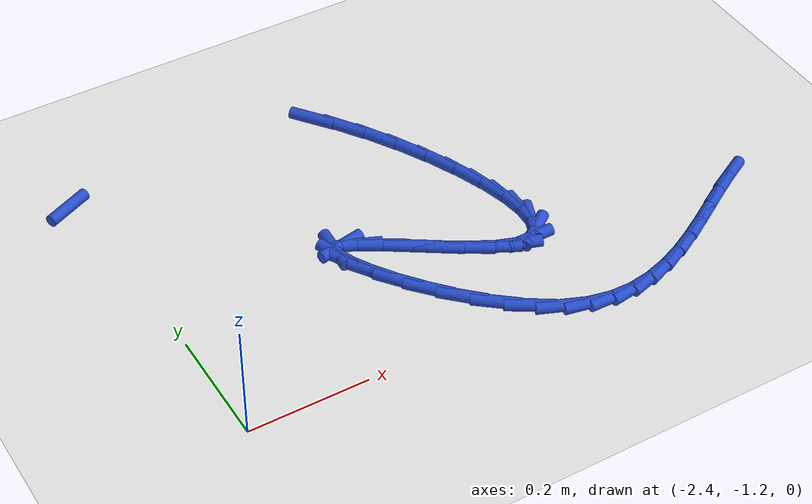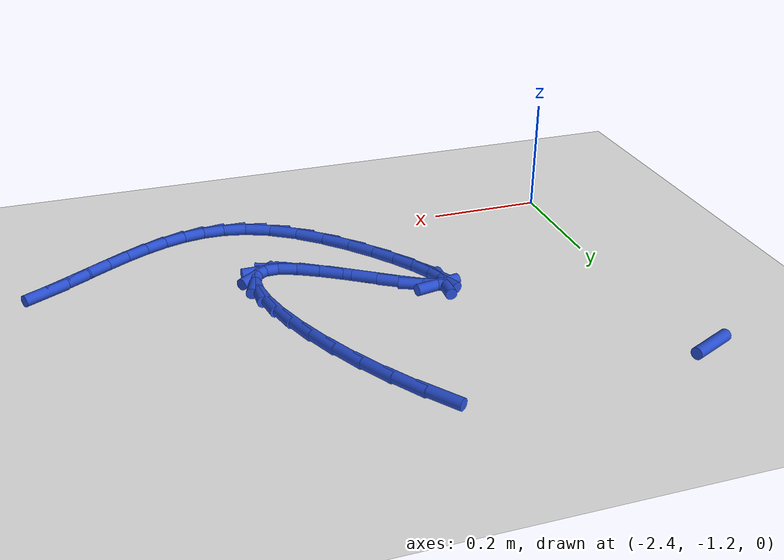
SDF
<sdf version="1.6">
 <world name="default">
  <model name="ground_plane">
   <static>1</static>
   <link name="link">
    <collision name="collision">
     <geometry><plane><normal>0 0 1</normal><size>100 100</size></plane></geometry>
     <surface><friction><ode><mu>100</mu><mu2>50</mu2></ode></friction></surface>
    </collision>
    <visual name="visual">
     <cast_shadows>0</cast_shadows>
     <geometry><plane><normal>0 0 1</normal><size>100 100</size></plane></geometry>
     <material>
      <script><uri>file://media/materials/scripts/gazebo.material</uri><name>Gazebo/WhiteGlow</name></script>
     </material>
    </visual>
   </link>
  </model>
  <model name="line">
   <link name="link_135">
    <pose>-2.432918932165104 -0.6413918340768284 0.01 0 1.57 0.4262401423666854</pose>
    <collision name="collision">
     <geometry><cylinder><radius>0.01</radius><length>0.08</length></cylinder></geometry>
    </collision>
    <visual name="visual">
     <material>
      <script><name>Gazebo/Blue</name><uri>file://media/materials/scripts/gazebo.material</uri></script>
     </material>
     <geometry><cylinder><radius>0.01</radius><length>0.08</length></cylinder></geometry>
    </visual>
   </link>
   <link name="link_149">
    <pose>-1.9900676363987346 -0.6446291324303864 0.01 0 1.57 -0.9224750128395854</pose>
    <collision name="collision">
     <geometry><cylinder><radius>0.01</radius><length>0.08</length></cylinder></geometry>
    </collision>
    <visual name="visual">
     <material>
      <script><name>Gazebo/Blue</name><uri>file://media/materials/scripts/gazebo.material</uri></script>
     </material>
     <geometry><cylinder><radius>0.01</radius><length>0.08</length></cylinder></geometry>
    </visual>
   </link>
   <link name="link_150">
    <pose>-1.9550635103245573 -0.6908356036253988 0.01 0 1.57 -0.9858784904764801</pose>
    <collision name="collision">
     <geometry><cylinder><radius>0.01</radius><length>0.08</length></cylinder></geometry>
    </collision>
    <visual name="visual">
     <material>
      <script><name>Gazebo/Blue</name><uri>file://media/materials/scripts/gazebo.material</uri></script>
     </material>
     <geometry><cylinder><radius>0.01</radius><length>0.08</length></cylinder></geometry>
    </visual>
   </link>
   <link name="link_151">
    <pose>-1.9226554815442716 -0.7397740646977872 0.01 0 1.57 -1.0437788238922734</pose>
    <collision name="collision">
     <geometry><cylinder><radius>0.01</radius><length>0.08</length></cylinder></geometry>
    </collision>
    <visual name="visual">
     <material>
      <script><name>Gazebo/Blue</name><uri>file://media/materials/scripts/gazebo.material</uri></script>
     </material>
     <geometry><cylinder><radius>0.01</radius><length>0.08</length></cylinder></geometry>
    </visual>
   </link>
   <link name="link_152">
    <pose>-1.8933911504834058 -0.7900635400556469 0.01 0 1.57 -1.1001178455500757</pose>
    <collision name="collision">
     <geometry><cylinder><radius>0.01</radius><length>0.08</length></cylinder></geometry>
    </collision>
    <visual name="visual">
     <material>
      <script><name>Gazebo/Blue</name><uri>file://media/materials/scripts/gazebo.material</uri></script>
     </material>
     <geometry><cylinder><radius>0.01</radius><length>0.08</length></cylinder></geometry>
    </visual>
   </link>
   <link name="link_153">
    <pose>-1.867818117567488 -0.8403230541070736 0.01 0 1.57 -1.1590238486146762</pose>
    <collision name="collision">
     <geometry><cylinder><radius>0.01</radius><length>0.08</length></cylinder></geometry>
    </collision>
    <visual name="visual">
     <material>
      <script><name>Gazebo/Blue</name><uri>file://media/materials/scripts/gazebo.material</uri></script>
     </material>
     <geometry><cylinder><radius>0.01</radius><length>0.08</length></cylinder></geometry>
    </visual>
   </link>
   <link name="link_154">
    <pose>-1.8464839832220479 -0.8891716312601631 0.01 0 1.57 -1.225870654361087</pose>
    <collision name="collision">
     <geometry><cylinder><radius>0.01</radius><length>0.08</length></cylinder></geometry>
    </collision>
    <visual name="visual">
     <material>
      <script><name>Gazebo/Blue</name><uri>file://media/materials/scripts/gazebo.material</uri></script>
     </material>
     <geometry><cylinder><radius>0.01</radius><length>0.08</length></cylinder></geometry>
    </visual>
   </link>
   <link name="link_155">
    <pose>-1.8299363478726132 -0.9352282959230106 0.01 0 1.57 -1.309201628307004</pose>
    <collision name="collision">
     <geometry><cylinder><radius>0.01</radius><length>0.08</length></cylinder></geometry>
    </collision>
    <visual name="visual">
     <material>
      <script><name>Gazebo/Blue</name><uri>file://media/materials/scripts/gazebo.material</uri></script>
     </material>
     <geometry><cylinder><radius>0.01</radius><length>0.08</length></cylinder></geometry>
    </visual>
   </link>
   <link name="link_156">
    <pose>-1.8187228119447134 -0.9771120725037121 0.01 0 1.57 -1.425075015032869</pose>
    <collision name="collision">
     <geometry><cylinder><radius>0.01</radius><length>0.08</length></cylinder></geometry>
    </collision>
    <visual name="visual">
     <material>
      <script><name>Gazebo/Blue</name><uri>file://media/materials/scripts/gazebo.material</uri></script>
     </material>
     <geometry><cylinder><radius>0.01</radius><length>0.08</length></cylinder></geometry>
    </visual>
   </link>
   <link name="link_157">
    <pose>-1.8133909758638764 -1.013441985410363 0.01 0 1.57 1.533478689398763</pose>
    <collision name="collision">
     <geometry><cylinder><radius>0.01</radius><length>0.08</length></cylinder></geometry>
    </collision>
    <visual name="visual">
     <material>
      <script><name>Gazebo/Blue</name><uri>file://media/materials/scripts/gazebo.material</uri></script>
     </material>
     <geometry><cylinder><radius>0.01</radius><length>0.08</length></cylinder></geometry>
    </visual>
   </link>
   <link name="link_158">
    <pose>-1.814488440055631 -1.042837059051059 0.01 0 1.57 1.2049887368963415</pose>
    <collision name="collision">
     <geometry><cylinder><radius>0.01</radius><length>0.08</length></cylinder></geometry>
    </collision>
    <visual name="visual">
     <material>
      <script><name>Gazebo/Blue</name><uri>file://media/materials/scripts/gazebo.material</uri></script>
     </material>
     <geometry><cylinder><radius>0.01</radius><length>0.08</length></cylinder></geometry>
    </visual>
   </link>
   <link name="link_159">
    <pose>-1.8225628049455058 -1.0639163178338955 0.01 0 1.57 0.6303810095413391</pose>
    <collision name="collision">
     <geometry><cylinder><radius>0.01</radius><length>0.08</length></cylinder></geometry>
    </collision>
    <visual name="visual">
     <material>
      <script><name>Gazebo/Blue</name><uri>file://media/materials/scripts/gazebo.material</uri></script>
     </material>
     <geometry><cylinder><radius>0.01</radius><length>0.08</length></cylinder></geometry>
    </visual>
   </link>
   <link name="link_160">
    <pose>-1.8381616709590298 -1.0752987861669685 0.01 0 1.57 0.012888890067230823</pose>
    <collision name="collision">
     <geometry><cylinder><radius>0.01</radius><length>0.08</length></cylinder></geometry>
    </collision>
    <visual name="visual">
     <material>
      <script><name>Gazebo/Blue</name><uri>file://media/materials/scripts/gazebo.material</uri></script>
     </material>
     <geometry><cylinder><radius>0.01</radius><length>0.08</length></cylinder></geometry>
    </visual>
   </link>
   <link name="link_161">
    <pose>-1.86183236299863 -1.0756038920097515 0.01 0 1.57 -0.33874397087114905</pose>
    <collision name="collision">
     <geometry><cylinder><radius>0.01</radius><length>0.08</length></cylinder></geometry>
    </collision>
    <visual name="visual">
     <material>
      <script><name>Gazebo/Blue</name><uri>file://media/materials/scripts/gazebo.material</uri></script>
     </material>
     <geometry><cylinder><radius>0.01</radius><length>0.08</length></cylinder></geometry>
    </visual>
   </link>
   <link name="link_162">
    <pose>-1.8934242847598068 -1.0644732900011544 0.01 0 1.57 -0.4873912658757481</pose>
    <collision name="collision">
     <geometry><cylinder><radius>0.01</radius><length>0.08</length></cylinder></geometry>
    </collision>
    <visual name="visual">
     <material>
      <script><name>Gazebo/Blue</name><uri>file://media/materials/scripts/gazebo.material</uri></script>
     </material>
     <geometry><cylinder><radius>0.01</radius><length>0.08</length></cylinder></geometry>
    </visual>
   </link>
   <link name="link_163">
    <pose>-1.9305818503959231 -1.0447782244751416 0.01 0 1.57 -0.5548769282705673</pose>
    <collision name="collision">
     <geometry><cylinder><radius>0.01</radius><length>0.08</length></cylinder></geometry>
    </collision>
    <visual name="visual">
     <material>
      <script><name>Gazebo/Blue</name><uri>file://media/materials/scripts/gazebo.material</uri></script>
     </material>
     <geometry><cylinder><radius>0.01</radius><length>0.08</length></cylinder></geometry>
    </visual>
   </link>
   <link name="link_164">
    <pose>-1.9705150752071943 -1.0200261922434586 0.01 0 1.57 -0.5825878629567202</pose>
    <collision name="collision">
     <geometry><cylinder><radius>0.01</radius><length>0.08</length></cylinder></geometry>
    </collision>
    <visual name="visual">
     <material>
      <script><name>Gazebo/Blue</name><uri>file://media/materials/scripts/gazebo.material</uri></script>
     </material>
     <geometry><cylinder><radius>0.01</radius><length>0.08</length></cylinder></geometry>
    </visual>
   </link>
   <link name="link_165">
    <pose>-2.0104339744938358 -0.9937246901178507 0.01 0 1.57 -0.5805119786318045</pose>
    <collision name="collision">
     <geometry><cylinder><radius>0.01</radius><length>0.08</length></cylinder></geometry>
    </collision>
    <visual name="visual">
     <material>
      <script><name>Gazebo/Blue</name><uri>file://media/materials/scripts/gazebo.material</uri></script>
     </material>
     <geometry><cylinder><radius>0.01</radius><length>0.08</length></cylinder></geometry>
    </visual>
   </link>
   <link name="link_166">
    <pose>-2.047548563556063 -0.9693812149100642 0.01 0 1.57 -0.5396207291692361</pose>
    <collision name="collision">
     <geometry><cylinder><radius>0.01</radius><length>0.08</length></cylinder></geometry>
    </collision>
    <visual name="visual">
     <material>
      <script><name>Gazebo/Blue</name><uri>file://media/materials/scripts/gazebo.material</uri></script>
     </material>
     <geometry><cylinder><radius>0.01</radius><length>0.08</length></cylinder></geometry>
    </visual>
   </link>
   <link name="link_167">
    <pose>-2.0790688576940926 -0.950503263431845 0.01 0 1.57 -0.4045081677138816</pose>
    <collision name="collision">
     <geometry><cylinder><radius>0.01</radius><length>0.08</length></cylinder></geometry>
    </collision>
    <visual name="visual">
     <material>
      <script><name>Gazebo/Blue</name><uri>file://media/materials/scripts/gazebo.material</uri></script>
     </material>
     <geometry><cylinder><radius>0.01</radius><length>0.08</length></cylinder></geometry>
    </visual>
   </link>
   <link name="link_168">
    <pose>-2.102204872208138 -0.9405983324949378 0.01 0 1.57 0.19174131702675284</pose>
    <collision name="collision">
     <geometry><cylinder><radius>0.01</radius><length>0.08</length></cylinder></geometry>
    </collision>
    <visual name="visual">
     <material>
      <script><name>Gazebo/Blue</name><uri>file://media/materials/scripts/gazebo.material</uri></script>
     </material>
     <geometry><cylinder><radius>0.01</radius><length>0.08</length></cylinder></geometry>
    </visual>
   </link>
   <link name="link_169">
    <pose>-2.114323480559283 -0.9429508714869461 0.01 0 1.57 1.5198451485539655</pose>
    <collision name="collision">
     <geometry><cylinder><radius>0.01</radius><length>0.08</length></cylinder></geometry>
    </collision>
    <visual name="visual">
     <material>
      <script><name>Gazebo/Blue</name><uri>file://media/materials/scripts/gazebo.material</uri></script>
     </material>
     <geometry><cylinder><radius>0.01</radius><length>0.08</length></cylinder></geometry>
    </visual>
   </link>
   <link name="link_170">
    <pose>-2.1150707417896744 -0.9576043988155808 0.01 0 1.57 -1.2102154431471297</pose>
    <collision name="collision">
     <geometry><cylinder><radius>0.01</radius><length>0.08</length></cylinder></geometry>
    </collision>
    <visual name="visual">
     <material>
      <script><name>Gazebo/Blue</name><uri>file://media/materials/scripts/gazebo.material</uri></script>
     </material>
     <geometry><cylinder><radius>0.01</radius><length>0.08</length></cylinder></geometry>
    </visual>
   </link>
   <link name="link_171">
    <pose>-2.105813156169041 -0.9821560189941015 0.01 0 1.57 -1.0617110975627324</pose>
    <collision name="collision">
     <geometry><cylinder><radius>0.01</radius><length>0.08</length></cylinder></geometry>
    </collision>
    <visual name="visual">
     <material>
      <script><name>Gazebo/Blue</name><uri>file://media/materials/scripts/gazebo.material</uri></script>
     </material>
     <geometry><cylinder><radius>0.01</radius><length>0.08</length></cylinder></geometry>
    </visual>
   </link>
   <link name="link_172">
    <pose>-2.087959555180338 -1.0141426428676907 0.01 0 1.57 -0.9753056743802544</pose>
    <collision name="collision">
     <geometry><cylinder><radius>0.01</radius><length>0.08</length></cylinder></geometry>
    </collision>
    <visual name="visual">
     <material>
      <script><name>Gazebo/Blue</name><uri>file://media/materials/scripts/gazebo.material</uri></script>
     </material>
     <geometry><cylinder><radius>0.01</radius><length>0.08</length></cylinder></geometry>
    </visual>
   </link>
   <link name="link_173">
    <pose>-2.062918770306517 -1.05110118128153 0.01 0 1.57 -0.9078253072557632</pose>
    <collision name="collision">
     <geometry><cylinder><radius>0.01</radius><length>0.08</length></cylinder></geometry>
    </collision>
    <visual name="visual">
     <material>
      <script><name>Gazebo/Blue</name><uri>file://media/materials/scripts/gazebo.material</uri></script>
     </material>
     <geometry><cylinder><radius>0.01</radius><length>0.08</length></cylinder></geometry>
    </visual>
   </link>
   <link name="link_174">
    <pose>-2.0320996330305325 -1.0905685450808018 0.01 0 1.57 -0.8432230521048089</pose>
    <collision name="collision">
     <geometry><cylinder><radius>0.01</radius><length>0.08</length></cylinder></geometry>
    </collision>
    <visual name="visual">
     <material>
      <script><name>Gazebo/Blue</name><uri>file://media/materials/scripts/gazebo.material</uri></script>
     </material>
     <geometry><cylinder><radius>0.01</radius><length>0.08</length></cylinder></geometry>
    </visual>
   </link>
   <link name="link_175">
    <pose>-1.9969109748353382 -1.1300816451106874 0.01 0 1.57 -0.7713968297530418</pose>
    <collision name="collision">
     <geometry><cylinder><radius>0.01</radius><length>0.08</length></cylinder></geometry>
    </collision>
    <visual name="visual">
     <material>
      <script><name>Gazebo/Blue</name><uri>file://media/materials/scripts/gazebo.material</uri></script>
     </material>
     <geometry><cylinder><radius>0.01</radius><length>0.08</length></cylinder></geometry>
    </visual>
   </link>
   <link name="link_176">
    <pose>-1.9587616272038884 -1.1671773922163684 0.01 0 1.57 -0.681680140769314</pose>
    <collision name="collision">
     <geometry><cylinder><radius>0.01</radius><length>0.08</length></cylinder></geometry>
    </collision>
    <visual name="visual">
     <material>
      <script><name>Gazebo/Blue</name><uri>file://media/materials/scripts/gazebo.material</uri></script>
     </material>
     <geometry><cylinder><radius>0.01</radius><length>0.08</length></cylinder></geometry>
    </visual>
   </link>
   <link name="link_177">
    <pose>-1.9190604216191345 -1.1993926972430284 0.01 0 1.57 -0.5580891042409667</pose>
    <collision name="collision">
     <geometry><cylinder><radius>0.01</radius><length>0.08</length></cylinder></geometry>
    </collision>
    <visual name="visual">
     <material>
      <script><name>Gazebo/Blue</name><uri>file://media/materials/scripts/gazebo.material</uri></script>
     </material>
     <geometry><cylinder><radius>0.01</radius><length>0.08</length></cylinder></geometry>
    </visual>
   </link>
   <link name="link_178">
    <pose>-1.8792145922368062 -1.2242680785101734 0.01 0 1.57 -0.38970642651107273</pose>
    <collision name="collision">
     <geometry><cylinder><radius>0.01</radius><length>0.08</length></cylinder></geometry>
    </collision>
    <visual name="visual">
     <material>
      <script><name>Gazebo/Blue</name><uri>file://media/materials/scripts/gazebo.material</uri></script>
     </material>
     <geometry><cylinder><radius>0.01</radius><length>0.08</length></cylinder></geometry>
    </visual>
   </link>
   <link name="link_179">
    <pose>-1.8402143178461698 -1.2402859505898036 0.01 0 1.57 -0.20271878645039673</pose>
    <collision name="collision">
     <geometry><cylinder><radius>0.01</radius><length>0.08</length></cylinder></geometry>
    </collision>
    <visual name="visual">
     <material>
      <script><name>Gazebo/Blue</name><uri>file://media/materials/scripts/gazebo.material</uri></script>
     </material>
     <geometry><cylinder><radius>0.01</radius><length>0.08</length></cylinder></geometry>
    </visual>
   </link>
   <link name="link_180">
    <pose>-1.802077446102283 -1.248124683615549 0.01 0 1.57 -0.01738890240245301</pose>
    <collision name="collision">
     <geometry><cylinder><radius>0.01</radius><length>0.08</length></cylinder></geometry>
    </collision>
    <visual name="visual">
     <material>
      <script><name>Gazebo/Blue</name><uri>file://media/materials/scripts/gazebo.material</uri></script>
     </material>
     <geometry><cylinder><radius>0.01</radius><length>0.08</length></cylinder></geometry>
    </visual>
   </link>
   <link name="link_181">
    <pose>-1.7646835256126998 -1.2487749883957788 0.01 0 1.57 0.14973294168793733</pose>
    <collision name="collision">
     <geometry><cylinder><radius>0.01</radius><length>0.08</length></cylinder></geometry>
    </collision>
    <visual name="visual">
     <material>
      <script><name>Gazebo/Blue</name><uri>file://media/materials/scripts/gazebo.material</uri></script>
     </material>
     <geometry><cylinder><radius>0.01</radius><length>0.08</length></cylinder></geometry>
    </visual>
   </link>
   <link name="link_182">
    <pose>-1.7279121049849768 -1.2432275757388633 0.01 0 1.57 0.2882566502362958</pose>
    <collision name="collision">
     <geometry><cylinder><radius>0.01</radius><length>0.08</length></cylinder></geometry>
    </collision>
    <visual name="visual">
     <material>
      <script><name>Gazebo/Blue</name><uri>file://media/materials/scripts/gazebo.material</uri></script>
     </material>
     <geometry><cylinder><radius>0.01</radius><length>0.08</length></cylinder></geometry>
    </visual>
   </link>
   <link name="link_183">
    <pose>-1.6916427328266685 -1.2324731564531717 0.01 0 1.57 0.3952059624332755</pose>
    <collision name="collision">
     <geometry><cylinder><radius>0.01</radius><length>0.08</length></cylinder></geometry>
    </collision>
    <visual name="visual">
     <material>
      <script><name>Gazebo/Blue</name><uri>file://media/materials/scripts/gazebo.material</uri></script>
     </material>
     <geometry><cylinder><radius>0.01</radius><length>0.08</length></cylinder></geometry>
    </visual>
   </link>
   <link name="link_184">
    <pose>-1.6557549577453312 -1.2175024413470736 0.01 0 1.57 0.4722105591964968</pose>
    <collision name="collision">
     <geometry><cylinder><radius>0.01</radius><length>0.08</length></cylinder></geometry>
    </collision>
    <visual name="visual">
     <material>
      <script><name>Gazebo/Blue</name><uri>file://media/materials/scripts/gazebo.material</uri></script>
     </material>
     <geometry><cylinder><radius>0.01</radius><length>0.08</length></cylinder></geometry>
    </visual>
   </link>
   <link name="link_185">
    <pose>-1.6201283283485204 -1.1993061412289394 0.01 0 1.57 0.5224008571283454</pose>
    <collision name="collision">
     <geometry><cylinder><radius>0.01</radius><length>0.08</length></cylinder></geometry>
    </collision>
    <visual name="visual">
     <material>
      <script><name>Gazebo/Blue</name><uri>file://media/materials/scripts/gazebo.material</uri></script>
     </material>
     <geometry><cylinder><radius>0.01</radius><length>0.08</length></cylinder></geometry>
    </visual>
   </link>
   <link name="link_186">
    <pose>-1.584642393243791 -1.1788749669071383 0.01 0 1.57 0.5485875687658137</pose>
    <collision name="collision">
     <geometry><cylinder><radius>0.01</radius><length>0.08</length></cylinder></geometry>
    </collision>
    <visual name="visual">
     <material>
      <script><name>Gazebo/Blue</name><uri>file://media/materials/scripts/gazebo.material</uri></script>
     </material>
     <geometry><cylinder><radius>0.01</radius><length>0.08</length></cylinder></geometry>
    </visual>
   </link>
   <link name="link_187">
    <pose>-1.549176701038699 -1.1571996291900404 0.01 0 1.57 0.5525127425768739</pose>
    <collision name="collision">
     <geometry><cylinder><radius>0.01</radius><length>0.08</length></cylinder></geometry>
    </collision>
    <visual name="visual">
     <material>
      <script><name>Gazebo/Blue</name><uri>file://media/materials/scripts/gazebo.material</uri></script>
     </material>
     <geometry><cylinder><radius>0.01</radius><length>0.08</length></cylinder></geometry>
    </visual>
   </link>
   <link name="link_188">
    <pose>-1.5136108003407998 -1.135270838886015 0.01 0 1.57 0.5346382097975074</pose>
    <collision name="collision">
     <geometry><cylinder><radius>0.01</radius><length>0.08</length></cylinder></geometry>
    </collision>
    <visual name="visual">
     <material>
      <script><name>Gazebo/Blue</name><uri>file://media/materials/scripts/gazebo.material</uri></script>
     </material>
     <geometry><cylinder><radius>0.01</radius><length>0.08</length></cylinder></geometry>
    </visual>
   </link>
   <link name="link_189">
    <pose>-1.4778242397576489 -1.1140793068034323 0.01 0 1.57 0.4941602427182507</pose>
    <collision name="collision">
     <geometry><cylinder><radius>0.01</radius><length>0.08</length></cylinder></geometry>
    </collision>
    <visual name="visual">
     <material>
      <script><name>Gazebo/Blue</name><uri>file://media/materials/scripts/gazebo.material</uri></script>
     </material>
     <geometry><cylinder><radius>0.01</radius><length>0.08</length></cylinder></geometry>
    </visual>
   </link>
  </model>
 </world>
</sdf>
